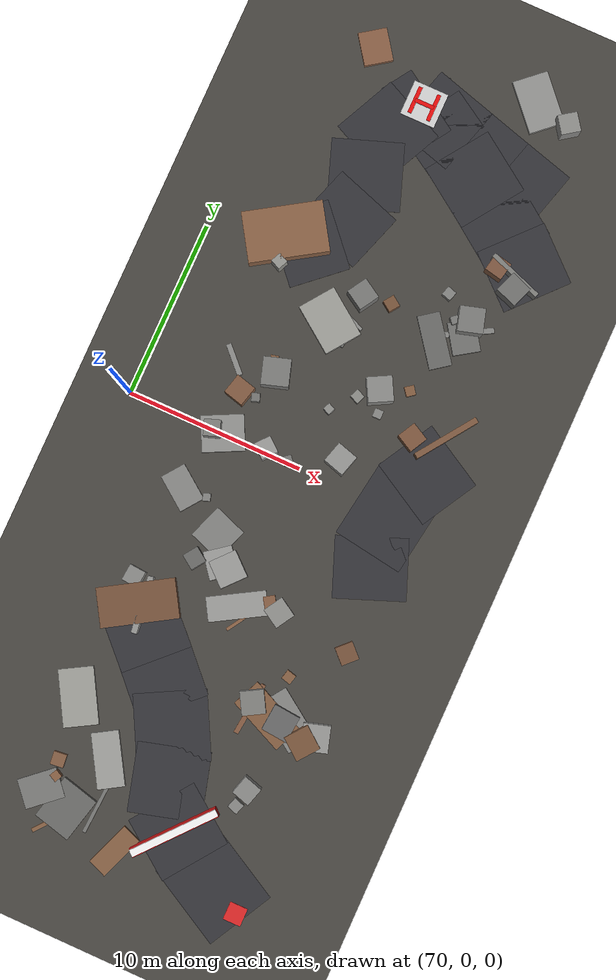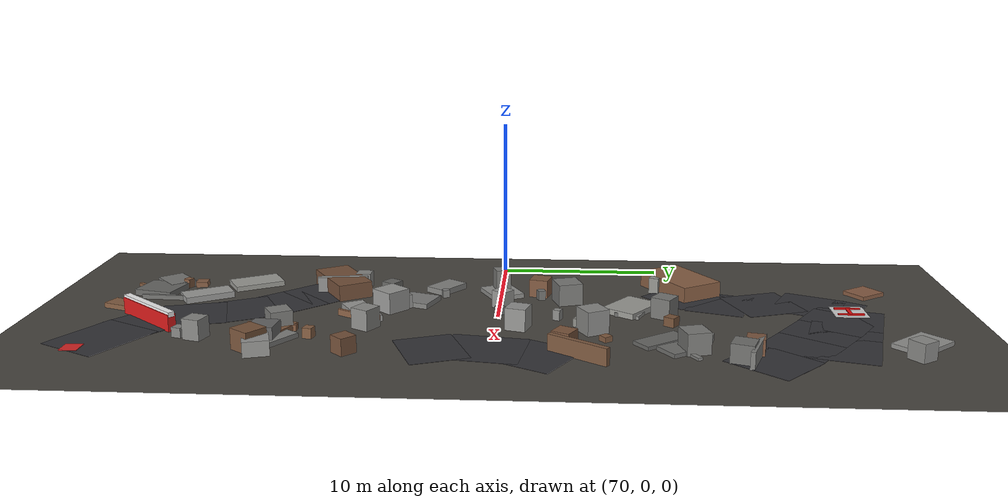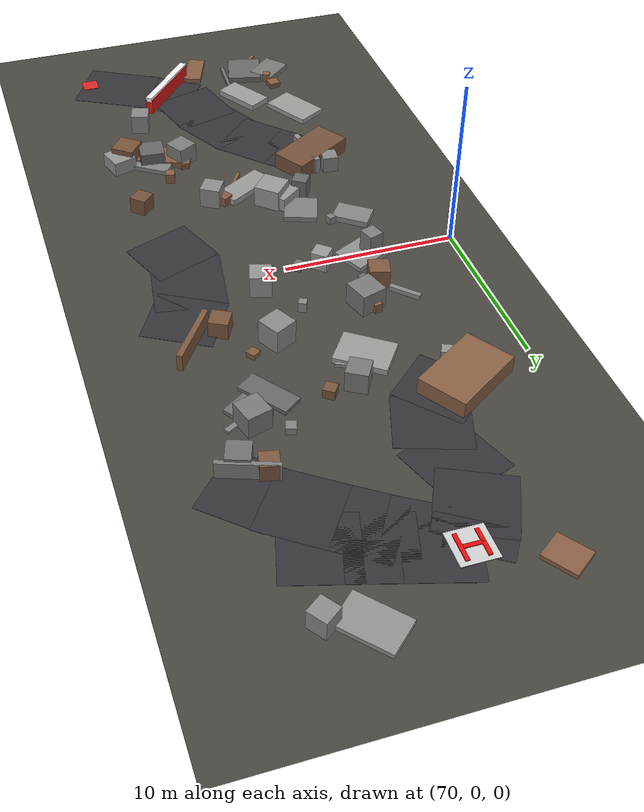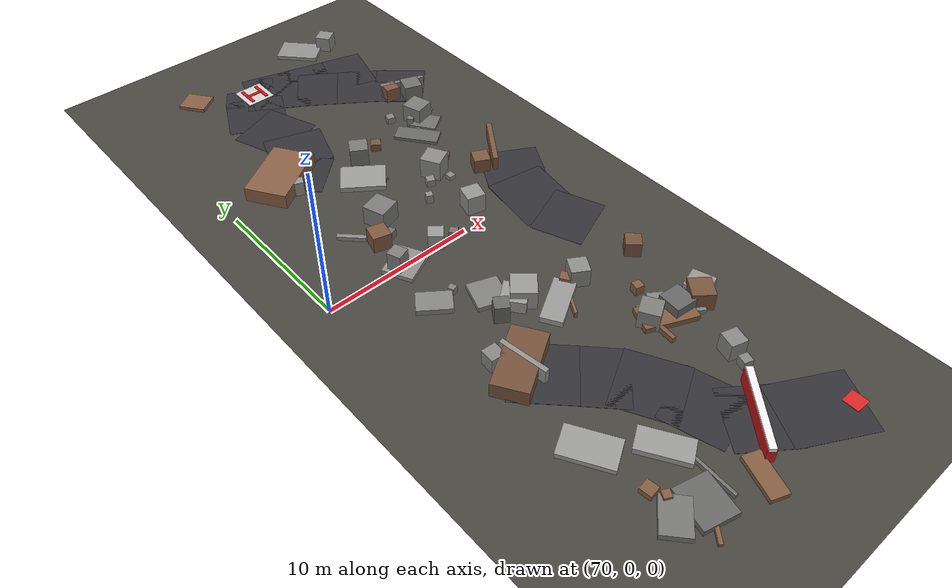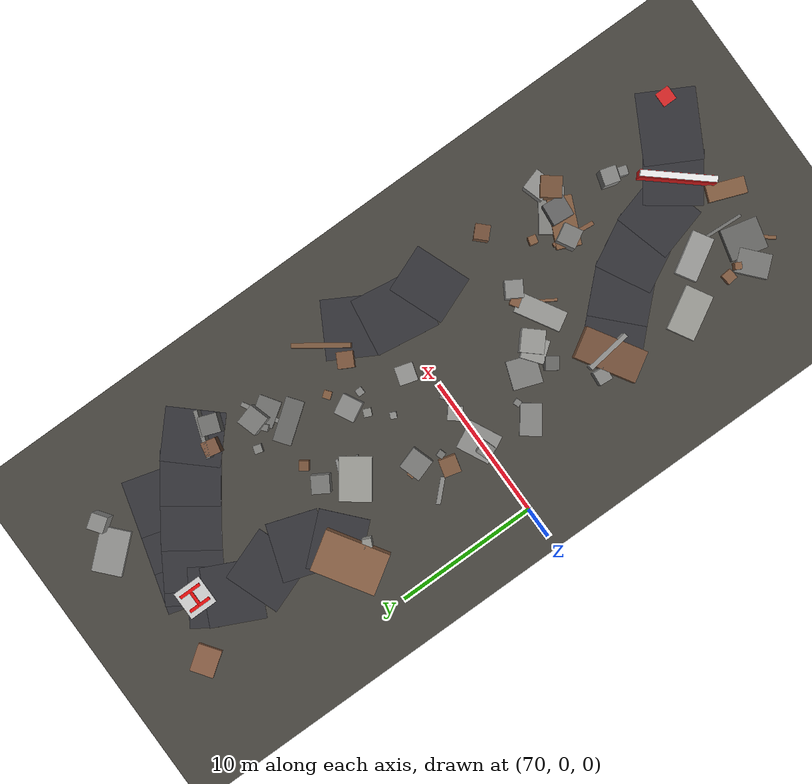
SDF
<sdf version="1.6">
 <world name="navitas_arena">
  <model name="ground_plane">
   <static>true</static>
   <link name="link">
    <collision name="collision">
     <geometry><plane><normal>0 0 1</normal><size>400 400</size></plane></geometry>
     <surface><friction><ode><mu>0.820</mu><mu2>0.820</mu2></ode></friction></surface>
    </collision>
    <visual name="visual">
     <cast_shadows>false</cast_shadows>
     <geometry><plane><normal>0 0 1</normal><size>400 400</size></plane></geometry>
     <material><ambient>0.280 0.270 0.250 1</ambient><diffuse>0.280 0.270 0.250 1</diffuse></material>
    </visual>
   </link>
  </model>
  <model name="road_zor_1_0">
   <static>true</static>
   <pose>84.910 -22.070 0.040 0 0 2.646</pose>
   <link name="link">
    <collision name="col"><geometry><box><size>4.811 4.000 0.020</size></box></geometry></collision>
    <visual name="vis">
     <geometry><box><size>4.811 4.000 0.020</size></box></geometry>
     <material><ambient>0.20 0.20 0.22 1</ambient><diffuse>0.20 0.20 0.22 1</diffuse></material>
    </visual>
   </link>
  </model>
  <model name="road_zor_1_1">
   <static>true</static>
   <pose>82.068 -20.320 0.040 0 0 2.510</pose>
   <link name="link">
    <collision name="col"><geometry><box><size>3.679 4.000 0.020</size></box></geometry></collision>
    <visual name="vis">
     <geometry><box><size>3.679 4.000 0.020</size></box></geometry>
     <material><ambient>0.20 0.20 0.22 1</ambient><diffuse>0.20 0.20 0.22 1</diffuse></material>
    </visual>
   </link>
  </model>
  <model name="road_zor_1_2">
   <static>true</static>
   <pose>80.559 -18.111 0.040 0 0 1.843</pose>
   <link name="link">
    <collision name="col"><geometry><box><size>3.784 4.000 0.020</size></box></geometry></collision>
    <visual name="vis">
     <geometry><box><size>3.784 4.000 0.020</size></box></geometry>
     <material><ambient>0.20 0.20 0.22 1</ambient><diffuse>0.20 0.20 0.22 1</diffuse></material>
    </visual>
   </link>
  </model>
  <model name="road_zor_1_3">
   <static>true</static>
   <pose>79.485 -15.427 0.040 0 0 2.058</pose>
   <link name="link">
    <collision name="col"><geometry><box><size>3.832 4.000 0.020</size></box></geometry></collision>
    <visual name="vis">
     <geometry><box><size>3.832 4.000 0.020</size></box></geometry>
     <material><ambient>0.20 0.20 0.22 1</ambient><diffuse>0.20 0.20 0.22 1</diffuse></material>
    </visual>
   </link>
  </model>
  <model name="road_zor_1_4">
   <static>true</static>
   <pose>77.865 -13.153 0.040 0 0 2.333</pose>
   <link name="link">
    <collision name="col"><geometry><box><size>3.605 4.000 0.020</size></box></geometry></collision>
    <visual name="vis">
     <geometry><box><size>3.605 4.000 0.020</size></box></geometry>
     <material><ambient>0.20 0.20 0.22 1</ambient><diffuse>0.20 0.20 0.22 1</diffuse></material>
    </visual>
   </link>
  </model>
  <model name="road_zor_1_5">
   <static>true</static>
   <pose>75.894 -11.124 0.040 0 0 2.350</pose>
   <link name="link">
    <collision name="col"><geometry><box><size>3.853 4.000 0.020</size></box></geometry></collision>
    <visual name="vis">
     <geometry><box><size>3.853 4.000 0.020</size></box></geometry>
     <material><ambient>0.20 0.20 0.22 1</ambient><diffuse>0.20 0.20 0.22 1</diffuse></material>
    </visual>
   </link>
  </model>
  <model name="road_zor_1_15">
   <static>true</static>
   <pose>75.452 11.401 0.040 0 0 0.727</pose>
   <link name="link">
    <collision name="col"><geometry><box><size>3.437 4.000 0.020</size></box></geometry></collision>
    <visual name="vis">
     <geometry><box><size>3.437 4.000 0.020</size></box></geometry>
     <material><ambient>0.20 0.20 0.22 1</ambient><diffuse>0.20 0.20 0.22 1</diffuse></material>
    </visual>
   </link>
  </model>
  <model name="road_zor_1_16">
   <static>true</static>
   <pose>76.813 13.483 0.040 0 0 1.249</pose>
   <link name="link">
    <collision name="col"><geometry><box><size>3.511 4.000 0.020</size></box></geometry></collision>
    <visual name="vis">
     <geometry><box><size>3.511 4.000 0.020</size></box></geometry>
     <material><ambient>0.20 0.20 0.22 1</ambient><diffuse>0.20 0.20 0.22 1</diffuse></material>
    </visual>
   </link>
  </model>
  <model name="road_zor_1_17">
   <static>true</static>
   <pose>76.726 16.111 0.040 0 0 1.916</pose>
   <link name="link">
    <collision name="col"><geometry><box><size>3.852 4.000 0.020</size></box></geometry></collision>
    <visual name="vis">
     <geometry><box><size>3.852 4.000 0.020</size></box></geometry>
     <material><ambient>0.20 0.20 0.22 1</ambient><diffuse>0.20 0.20 0.22 1</diffuse></material>
    </visual>
   </link>
  </model>
  <model name="road_zor_1_18">
   <static>true</static>
   <pose>76.855 18.815 0.040 0 0 1.126</pose>
   <link name="link">
    <collision name="col"><geometry><box><size>3.814 4.000 0.020</size></box></geometry></collision>
    <visual name="vis">
     <geometry><box><size>3.814 4.000 0.020</size></box></geometry>
     <material><ambient>0.20 0.20 0.22 1</ambient><diffuse>0.20 0.20 0.22 1</diffuse></material>
    </visual>
   </link>
  </model>
  <model name="road_zor_1_19">
   <static>true</static>
   <pose>77.766 20.565 0.040 0 0 0.993</pose>
   <link name="link">
    <collision name="col"><geometry><box><size>1.939 4.000 0.020</size></box></geometry></collision>
    <visual name="vis">
     <geometry><box><size>1.939 4.000 0.020</size></box></geometry>
     <material><ambient>0.20 0.20 0.22 1</ambient><diffuse>0.20 0.20 0.22 1</diffuse></material>
    </visual>
   </link>
  </model>
  <model name="road_zor_2_7">
   <static>true</static>
   <pose>85.701 -3.333 0.040 0 0 1.942</pose>
   <link name="link">
    <collision name="col"><geometry><box><size>3.404 4.000 0.020</size></box></geometry></collision>
    <visual name="vis">
     <geometry><box><size>3.404 4.000 0.020</size></box></geometry>
     <material><ambient>0.20 0.20 0.22 1</ambient><diffuse>0.20 0.20 0.22 1</diffuse></material>
    </visual>
   </link>
  </model>
  <model name="road_zor_2_8">
   <static>true</static>
   <pose>85.513 -0.417 0.040 0 0 1.420</pose>
   <link name="link">
    <collision name="col"><geometry><box><size>4.440 4.000 0.020</size></box></geometry></collision>
    <visual name="vis">
     <geometry><box><size>4.440 4.000 0.020</size></box></geometry>
     <material><ambient>0.20 0.20 0.22 1</ambient><diffuse>0.20 0.20 0.22 1</diffuse></material>
    </visual>
   </link>
  </model>
  <model name="road_zor_2_9">
   <static>true</static>
   <pose>86.440 2.500 0.040 0 0 1.056</pose>
   <link name="link">
    <collision name="col"><geometry><box><size>3.581 4.000 0.020</size></box></geometry></collision>
    <visual name="vis">
     <geometry><box><size>3.581 4.000 0.020</size></box></geometry>
     <material><ambient>0.20 0.20 0.22 1</ambient><diffuse>0.20 0.20 0.22 1</diffuse></material>
    </visual>
   </link>
  </model>
  <model name="road_zor_2_14">
   <static>true</static>
   <pose>86.650 14.984 0.040 0 0 2.404</pose>
   <link name="link">
    <collision name="col"><geometry><box><size>3.599 4.000 0.020</size></box></geometry></collision>
    <visual name="vis">
     <geometry><box><size>3.599 4.000 0.020</size></box></geometry>
     <material><ambient>0.20 0.20 0.22 1</ambient><diffuse>0.20 0.20 0.22 1</diffuse></material>
    </visual>
   </link>
  </model>
  <model name="road_zor_2_15">
   <static>true</static>
   <pose>84.539 16.696 0.040 0 0 2.516</pose>
   <link name="link">
    <collision name="col"><geometry><box><size>3.645 4.000 0.020</size></box></geometry></collision>
    <visual name="vis">
     <geometry><box><size>3.645 4.000 0.020</size></box></geometry>
     <material><ambient>0.20 0.20 0.22 1</ambient><diffuse>0.20 0.20 0.22 1</diffuse></material>
    </visual>
   </link>
  </model>
  <model name="road_zor_2_16">
   <static>true</static>
   <pose>82.241 18.320 0.040 0 0 2.537</pose>
   <link name="link">
    <collision name="col"><geometry><box><size>3.784 4.000 0.020</size></box></geometry></collision>
    <visual name="vis">
     <geometry><box><size>3.784 4.000 0.020</size></box></geometry>
     <material><ambient>0.20 0.20 0.22 1</ambient><diffuse>0.20 0.20 0.22 1</diffuse></material>
    </visual>
   </link>
  </model>
  <model name="road_zor_2_17">
   <static>true</static>
   <pose>79.922 19.840 0.040 0 0 2.588</pose>
   <link name="link">
    <collision name="col"><geometry><box><size>3.564 4.000 0.020</size></box></geometry></collision>
    <visual name="vis">
     <geometry><box><size>3.564 4.000 0.020</size></box></geometry>
     <material><ambient>0.20 0.20 0.22 1</ambient><diffuse>0.20 0.20 0.22 1</diffuse></material>
    </visual>
   </link>
  </model>
  <model name="road_zor_2_18">
   <static>true</static>
   <pose>78.419 20.770 0.040 0 0 2.585</pose>
   <link name="link">
    <collision name="col"><geometry><box><size>1.771 4.000 0.020</size></box></geometry></collision>
    <visual name="vis">
     <geometry><box><size>1.771 4.000 0.020</size></box></geometry>
     <material><ambient>0.20 0.20 0.22 1</ambient><diffuse>0.20 0.20 0.22 1</diffuse></material>
    </visual>
   </link>
  </model>
  <model name="road_zor_3_27">
   <static>true</static>
   <pose>84.547 19.133 0.040 0 0 2.867</pose>
   <link name="link">
    <collision name="col"><geometry><box><size>3.841 4.000 0.020</size></box></geometry></collision>
    <visual name="vis">
     <geometry><box><size>3.841 4.000 0.020</size></box></geometry>
     <material><ambient>0.20 0.20 0.22 1</ambient><diffuse>0.20 0.20 0.22 1</diffuse></material>
    </visual>
   </link>
  </model>
  <model name="road_zor_3_28">
   <static>true</static>
   <pose>81.909 19.885 0.040 0 0 2.860</pose>
   <link name="link">
    <collision name="col"><geometry><box><size>3.445 4.000 0.020</size></box></geometry></collision>
    <visual name="vis">
     <geometry><box><size>3.445 4.000 0.020</size></box></geometry>
     <material><ambient>0.20 0.20 0.22 1</ambient><diffuse>0.20 0.20 0.22 1</diffuse></material>
    </visual>
   </link>
  </model>
  <model name="road_zor_3_29">
   <static>true</static>
   <pose>79.368 20.619 0.040 0 0 2.860</pose>
   <link name="link">
    <collision name="col"><geometry><box><size>3.644 4.000 0.020</size></box></geometry></collision>
    <visual name="vis">
     <geometry><box><size>3.644 4.000 0.020</size></box></geometry>
     <material><ambient>0.20 0.20 0.22 1</ambient><diffuse>0.20 0.20 0.22 1</diffuse></material>
    </visual>
   </link>
  </model>
  <model name="bar_zor_1">
   <static>true</static>
   <pose>81.905 -20.320 0.500 0 0 4.004</pose>
   <link name="link">
    <collision name="col"><geometry><box><size>5.000 0.500 1.000</size></box></geometry></collision>
    <visual name="vis">
     <geometry><box><size>5.000 0.500 1.000</size></box></geometry>
     <material><ambient>0.85 0.10 0.10 1</ambient><diffuse>0.85 0.10 0.10 1</diffuse></material>
    </visual>
   </link>
  </model>
  <model name="bar_zor_1b">
   <static>true</static>
   <pose>81.905 -20.320 1.000 0 0 4.004</pose>
   <link name="link">
    <collision name="col"><geometry><box><size>5.000 0.400 0.300</size></box></geometry></collision>
    <visual name="vis">
     <geometry><box><size>5.000 0.400 0.300</size></box></geometry>
     <material><ambient>0.95 0.95 0.95 1</ambient><diffuse>0.95 0.95 0.95 1</diffuse></material>
    </visual>
   </link>
  </model>
  <model name="blk_zor_1_0_0">
   <static>true</static>
   <pose>74.349 -8.893 0.500 0 0 1.489</pose>
   <link name="link">
    <collision name="col"><geometry><box><size>0.934 0.934 1.000</size></box></geometry></collision>
    <visual name="vis">
     <geometry><box><size>0.934 0.934 1.000</size></box></geometry>
     <material><ambient>0.53 0.53 0.52 1</ambient><diffuse>0.53 0.53 0.52 1</diffuse></material>
    </visual>
   </link>
  </model>
  <model name="blk_zor_1_0_4">
   <static>true</static>
   <pose>75.403 -10.099 0.500 0 0 1.704</pose>
   <link name="link">
    <collision name="col"><geometry><box><size>3.147 0.316 1.000</size></box></geometry></collision>
    <visual name="vis">
     <geometry><box><size>3.147 0.316 1.000</size></box></geometry>
     <material><ambient>0.57 0.57 0.56 1</ambient><diffuse>0.57 0.57 0.56 1</diffuse></material>
    </visual>
   </link>
  </model>
  <model name="blk_zor_1_0_5">
   <static>true</static>
   <pose>75.141 -10.114 0.500 0 0 0.550</pose>
   <link name="link">
    <collision name="col"><geometry><box><size>4.255 2.178 1.000</size></box></geometry></collision>
    <visual name="vis">
     <geometry><box><size>4.255 2.178 1.000</size></box></geometry>
     <material><ambient>0.46 0.32 0.23 1</ambient><diffuse>0.46 0.32 0.23 1</diffuse></material>
    </visual>
   </link>
  </model>
  <model name="blk_zor_1_2_0">
   <static>true</static>
   <pose>74.106 11.307 0.500 0 0 0.569</pose>
   <link name="link">
    <collision name="col"><geometry><box><size>4.455 2.828 1.000</size></box></geometry></collision>
    <visual name="vis">
     <geometry><box><size>4.455 2.828 1.000</size></box></geometry>
     <material><ambient>0.54 0.38 0.27 1</ambient><diffuse>0.54 0.38 0.27 1</diffuse></material>
    </visual>
   </link>
  </model>
  <model name="blk_zor_1_2_5">
   <static>true</static>
   <pose>74.463 9.704 0.500 0 0 1.142</pose>
   <link name="link">
    <collision name="col"><geometry><box><size>0.611 0.611 1.000</size></box></geometry></collision>
    <visual name="vis">
     <geometry><box><size>0.611 0.611 1.000</size></box></geometry>
     <material><ambient>0.58 0.58 0.56 1</ambient><diffuse>0.58 0.58 0.56 1</diffuse></material>
    </visual>
   </link>
  </model>
  <model name="blk_zor_2_0_3">
   <static>true</static>
   <pose>86.382 -7.999 0.500 0 0 2.365</pose>
   <link name="link">
    <collision name="col"><geometry><box><size>1.002 1.002 1.000</size></box></geometry></collision>
    <visual name="vis">
     <geometry><box><size>1.002 1.002 1.000</size></box></geometry>
     <material><ambient>0.46 0.32 0.23 1</ambient><diffuse>0.46 0.32 0.23 1</diffuse></material>
    </visual>
   </link>
  </model>
  <model name="blk_zor_2_1_1">
   <static>true</static>
   <pose>86.533 4.662 0.500 0 0 0.958</pose>
   <link name="link">
    <collision name="col"><geometry><box><size>3.822 0.328 1.000</size></box></geometry></collision>
    <visual name="vis">
     <geometry><box><size>3.822 0.328 1.000</size></box></geometry>
     <material><ambient>0.49 0.35 0.25 1</ambient><diffuse>0.49 0.35 0.25 1</diffuse></material>
    </visual>
   </link>
  </model>
  <model name="blk_zor_2_1_4">
   <static>true</static>
   <pose>84.866 3.943 0.500 0 0 2.650</pose>
   <link name="link">
    <collision name="col"><geometry><box><size>1.094 1.094 1.000</size></box></geometry></collision>
    <visual name="vis">
     <geometry><box><size>1.094 1.094 1.000</size></box></geometry>
     <material><ambient>0.49 0.34 0.24 1</ambient><diffuse>0.49 0.34 0.24 1</diffuse></material>
    </visual>
   </link>
  </model>
  <model name="blk_zor_2_2_1">
   <static>true</static>
   <pose>86.587 13.439 0.577 0 0 2.789</pose>
   <link name="link">
    <collision name="col"><geometry><box><size>1.274 1.274 1.154</size></box></geometry></collision>
    <visual name="vis">
     <geometry><box><size>1.274 1.274 1.154</size></box></geometry>
     <material><ambient>0.44 0.44 0.43 1</ambient><diffuse>0.44 0.44 0.43 1</diffuse></material>
    </visual>
   </link>
  </model>
  <model name="blk_zor_2_2_5">
   <static>true</static>
   <pose>85.336 14.256 0.500 0 0 1.368</pose>
   <link name="link">
    <collision name="col"><geometry><box><size>1.015 1.015 1.000</size></box></geometry></collision>
    <visual name="vis">
     <geometry><box><size>1.015 1.015 1.000</size></box></geometry>
     <material><ambient>0.49 0.34 0.25 1</ambient><diffuse>0.49 0.34 0.25 1</diffuse></material>
    </visual>
   </link>
  </model>
  <model name="deb_zor_3">
   <static>true</static>
   <pose>75.565 -22.687 0.121 0 0 0.886</pose>
   <link name="link">
    <collision name="col"><geometry><box><size>1.872 0.220 0.241</size></box></geometry></collision>
    <visual name="vis">
     <geometry><box><size>1.872 0.220 0.241</size></box></geometry>
     <material><ambient>0.52 0.37 0.26 1</ambient><diffuse>0.52 0.37 0.26 1</diffuse></material>
    </visual>
   </link>
  </model>
  <model name="deb_zor_4">
   <static>true</static>
   <pose>80.892 10.150 0.276 0 0 0.954</pose>
   <link name="link">
    <collision name="col"><geometry><box><size>0.669 0.669 0.553</size></box></geometry></collision>
    <visual name="vis">
     <geometry><box><size>0.669 0.669 0.553</size></box></geometry>
     <material><ambient>0.47 0.33 0.23 1</ambient><diffuse>0.47 0.33 0.23 1</diffuse></material>
    </visual>
   </link>
  </model>
  <model name="deb_zor_5">
   <static>true</static>
   <pose>84.685 -12.795 0.505 0 0 3.052</pose>
   <link name="link">
    <collision name="col"><geometry><box><size>1.488 1.488 1.011</size></box></geometry></collision>
    <visual name="vis">
     <geometry><box><size>1.488 1.488 1.011</size></box></geometry>
     <material><ambient>0.40 0.40 0.40 1</ambient><diffuse>0.40 0.40 0.40 1</diffuse></material>
    </visual>
   </link>
  </model>
  <model name="deb_zor_6">
   <static>true</static>
   <pose>76.778 4.137 0.663 0 0 0.309</pose>
   <link name="link">
    <collision name="col"><geometry><box><size>1.518 1.518 1.325</size></box></geometry></collision>
    <visual name="vis">
     <geometry><box><size>1.518 1.518 1.325</size></box></geometry>
     <material><ambient>0.48 0.48 0.47 1</ambient><diffuse>0.48 0.48 0.47 1</diffuse></material>
    </visual>
   </link>
  </model>
  <model name="deb_zor_12">
   <static>true</static>
   <pose>77.959 0.221 0.538 0 0 0.870</pose>
   <link name="link">
    <collision name="col"><geometry><box><size>0.957 0.957 1.076</size></box></geometry></collision>
    <visual name="vis">
     <geometry><box><size>0.957 0.957 1.076</size></box></geometry>
     <material><ambient>0.60 0.60 0.59 1</ambient><diffuse>0.60 0.60 0.59 1</diffuse></material>
    </visual>
   </link>
  </model>
  <model name="deb_zor_14">
   <static>true</static>
   <pose>82.873 -12.806 0.181 0 0 1.467</pose>
   <link name="link">
    <collision name="col"><geometry><box><size>2.958 0.274 0.362</size></box></geometry></collision>
    <visual name="vis">
     <geometry><box><size>2.958 0.274 0.362</size></box></geometry>
     <material><ambient>0.51 0.35 0.25 1</ambient><diffuse>0.51 0.35 0.25 1</diffuse></material>
    </visual>
   </link>
  </model>
  <model name="deb_zor_15">
   <static>true</static>
   <pose>85.207 10.138 0.119 0 0 2.160</pose>
   <link name="link">
    <collision name="col"><geometry><box><size>1.820 1.532 0.239</size></box></geometry></collision>
    <visual name="vis">
     <geometry><box><size>1.820 1.532 0.239</size></box></geometry>
     <material><ambient>0.44 0.44 0.43 1</ambient><diffuse>0.44 0.44 0.43 1</diffuse></material>
    </visual>
   </link>
  </model>
  <model name="deb_zor_17">
   <static>true</static>
   <pose>84.083 -10.417 0.309 0 0 2.895</pose>
   <link name="link">
    <collision name="col"><geometry><box><size>0.555 0.555 0.618</size></box></geometry></collision>
    <visual name="vis">
     <geometry><box><size>0.555 0.555 0.618</size></box></geometry>
     <material><ambient>0.52 0.37 0.26 1</ambient><diffuse>0.52 0.37 0.26 1</diffuse></material>
    </visual>
   </link>
  </model>
  <model name="deb_zor_21">
   <static>true</static>
   <pose>74.949 -20.231 0.279 0 0 2.662</pose>
   <link name="link">
    <collision name="col"><geometry><box><size>0.464 0.464 0.557</size></box></geometry></collision>
    <visual name="vis">
     <geometry><box><size>0.464 0.464 0.557</size></box></geometry>
     <material><ambient>0.53 0.37 0.26 1</ambient><diffuse>0.53 0.37 0.26 1</diffuse></material>
    </visual>
   </link>
  </model>
  <model name="deb_zor_36">
   <static>true</static>
   <pose>75.400 2.473 0.555 0 0 2.889</pose>
   <link name="link">
    <collision name="col"><geometry><box><size>1.164 1.164 1.110</size></box></geometry></collision>
    <visual name="vis">
     <geometry><box><size>1.164 1.164 1.110</size></box></geometry>
     <material><ambient>0.50 0.35 0.25 1</ambient><diffuse>0.50 0.35 0.25 1</diffuse></material>
    </visual>
   </link>
  </model>
  <model name="deb_zor_37">
   <static>true</static>
   <pose>74.694 -19.421 0.175 0 0 1.677</pose>
   <link name="link">
    <collision name="col"><geometry><box><size>0.730 0.730 0.351</size></box></geometry></collision>
    <visual name="vis">
     <geometry><box><size>0.730 0.730 0.351</size></box></geometry>
     <material><ambient>0.51 0.36 0.26 1</ambient><diffuse>0.51 0.36 0.26 1</diffuse></material>
    </visual>
   </link>
  </model>
  <model name="deb_zor_40">
   <static>true</static>
   <pose>85.669 22.967 0.547 0 0 2.192</pose>
   <link name="link">
    <collision name="col"><geometry><box><size>1.091 1.091 1.093</size></box></geometry></collision>
    <visual name="vis">
     <geometry><box><size>1.091 1.091 1.093</size></box></geometry>
     <material><ambient>0.55 0.55 0.54 1</ambient><diffuse>0.55 0.55 0.54 1</diffuse></material>
    </visual>
   </link>
  </model>
  <model name="deb_zor_45">
   <static>true</static>
   <pose>84.505 -16.730 0.612 0 0 1.282</pose>
   <link name="link">
    <collision name="col"><geometry><box><size>1.075 1.075 1.224</size></box></geometry></collision>
    <visual name="vis">
     <geometry><box><size>1.075 1.075 1.224</size></box></geometry>
     <material><ambient>0.53 0.53 0.52 1</ambient><diffuse>0.53 0.53 0.52 1</diffuse></material>
    </visual>
   </link>
  </model>
  <model name="deb_zor_49">
   <static>true</static>
   <pose>85.351 10.478 0.077 0 0 0.514</pose>
   <link name="link">
    <collision name="col"><geometry><box><size>2.764 0.300 0.154</size></box></geometry></collision>
    <visual name="vis">
     <geometry><box><size>2.764 0.300 0.154</size></box></geometry>
     <material><ambient>0.51 0.51 0.50 1</ambient><diffuse>0.51 0.51 0.50 1</diffuse></material>
    </visual>
   </link>
  </model>
  <model name="deb_zor_55">
   <static>true</static>
   <pose>80.631 -8.496 0.192 0 0 1.018</pose>
   <link name="link">
    <collision name="col"><geometry><box><size>2.338 0.171 0.383</size></box></geometry></collision>
    <visual name="vis">
     <geometry><box><size>2.338 0.171 0.383</size></box></geometry>
     <material><ambient>0.54 0.38 0.27 1</ambient><diffuse>0.54 0.38 0.27 1</diffuse></material>
    </visual>
   </link>
  </model>
  <model name="deb_zor_56">
   <static>true</static>
   <pose>76.138 -21.601 0.192 0 0 1.330</pose>
   <link name="link">
    <collision name="col"><geometry><box><size>2.518 2.153 0.383</size></box></geometry></collision>
    <visual name="vis">
     <geometry><box><size>2.518 2.153 0.383</size></box></geometry>
     <material><ambient>0.41 0.41 0.40 1</ambient><diffuse>0.41 0.41 0.40 1</diffuse></material>
    </visual>
   </link>
  </model>
  <model name="deb_zor_59">
   <static>true</static>
   <pose>77.104 -18.355 0.189 0 0 2.115</pose>
   <link name="link">
    <collision name="col"><geometry><box><size>3.008 1.493 0.379</size></box></geometry></collision>
    <visual name="vis">
     <geometry><box><size>3.008 1.493 0.379</size></box></geometry>
     <material><ambient>0.61 0.61 0.60 1</ambient><diffuse>0.61 0.61 0.60 1</diffuse></material>
    </visual>
   </link>
  </model>
  <model name="deb_zor_64">
   <static>true</static>
   <pose>78.231 7.972 0.178 0 0 2.510</pose>
   <link name="link">
    <collision name="col"><geometry><box><size>2.944 2.172 0.356</size></box></geometry></collision>
    <visual name="vis">
     <geometry><box><size>2.944 2.172 0.356</size></box></geometry>
     <material><ambient>0.61 0.61 0.59 1</ambient><diffuse>0.61 0.61 0.59 1</diffuse></material>
    </visual>
   </link>
  </model>
  <model name="deb_zor_71">
   <static>true</static>
   <pose>84.945 -12.562 0.141 0 0 2.541</pose>
   <link name="link">
    <collision name="col"><geometry><box><size>3.061 1.689 0.282</size></box></geometry></collision>
    <visual name="vis">
     <geometry><box><size>3.061 1.689 0.282</size></box></geometry>
     <material><ambient>0.51 0.51 0.50 1</ambient><diffuse>0.51 0.51 0.50 1</diffuse></material>
    </visual>
   </link>
  </model>
  <model name="deb_zor_73">
   <static>true</static>
   <pose>78.269 -6.373 0.410 0 0 2.229</pose>
   <link name="link">
    <collision name="col"><geometry><box><size>1.576 1.576 0.819</size></box></geometry></collision>
    <visual name="vis">
     <geometry><box><size>1.576 1.576 0.819</size></box></geometry>
     <material><ambient>0.60 0.60 0.59 1</ambient><diffuse>0.60 0.60 0.59 1</diffuse></material>
    </visual>
   </link>
  </model>
  <model name="deb_zor_77">
   <static>true</static>
   <pose>80.007 -8.122 0.192 0 0 0.532</pose>
   <link name="link">
    <collision name="col"><geometry><box><size>3.257 1.364 0.384</size></box></geometry></collision>
    <visual name="vis">
     <geometry><box><size>3.257 1.364 0.384</size></box></geometry>
     <material><ambient>0.60 0.60 0.59 1</ambient><diffuse>0.60 0.60 0.59 1</diffuse></material>
    </visual>
   </link>
  </model>
  <model name="deb_zor_78">
   <static>true</static>
   <pose>76.111 -3.469 0.234 0 0 1.907</pose>
   <link name="link">
    <collision name="col"><geometry><box><size>0.422 0.422 0.469</size></box></geometry></collision>
    <visual name="vis">
     <geometry><box><size>0.422 0.422 0.469</size></box></geometry>
     <material><ambient>0.50 0.50 0.49 1</ambient><diffuse>0.50 0.50 0.49 1</diffuse></material>
    </visual>
   </link>
  </model>
  <model name="deb_zor_79">
   <static>true</static>
   <pose>83.834 9.308 0.113 0 0 2.213</pose>
   <link name="link">
    <collision name="col"><geometry><box><size>2.999 1.257 0.225</size></box></geometry></collision>
    <visual name="vis">
     <geometry><box><size>2.999 1.257 0.225</size></box></geometry>
     <material><ambient>0.41 0.41 0.40 1</ambient><diffuse>0.41 0.41 0.40 1</diffuse></material>
    </visual>
   </link>
  </model>
  <model name="deb_zor_82">
   <static>true</static>
   <pose>83.700 23.600 0.133 0 0 2.304</pose>
   <link name="link">
    <collision name="col"><geometry><box><size>2.997 2.014 0.266</size></box></geometry></collision>
    <visual name="vis">
     <geometry><box><size>2.997 2.014 0.266</size></box></geometry>
     <material><ambient>0.57 0.57 0.56 1</ambient><diffuse>0.57 0.57 0.56 1</diffuse></material>
    </visual>
   </link>
  </model>
  <model name="deb_zor_97">
   <static>true</static>
   <pose>86.695 -12.753 0.443 0 0 0.296</pose>
   <link name="link">
    <collision name="col"><geometry><box><size>1.467 1.467 0.886</size></box></geometry></collision>
    <visual name="vis">
     <geometry><box><size>1.467 1.467 0.886</size></box></geometry>
     <material><ambient>0.58 0.58 0.57 1</ambient><diffuse>0.58 0.58 0.57 1</diffuse></material>
    </visual>
   </link>
  </model>
  <model name="deb_zor_109">
   <static>true</static>
   <pose>80.160 3.548 0.310 0 0 2.716</pose>
   <link name="link">
    <collision name="col"><geometry><box><size>0.439 0.439 0.620</size></box></geometry></collision>
    <visual name="vis">
     <geometry><box><size>0.439 0.439 0.620</size></box></geometry>
     <material><ambient>0.55 0.55 0.54 1</ambient><diffuse>0.55 0.55 0.54 1</diffuse></material>
    </visual>
   </link>
  </model>
  <model name="deb_zor_114">
   <static>true</static>
   <pose>83.517 11.948 0.222 0 0 1.277</pose>
   <link name="link">
    <collision name="col"><geometry><box><size>0.553 0.553 0.444</size></box></geometry></collision>
    <visual name="vis">
     <geometry><box><size>0.553 0.553 0.444</size></box></geometry>
     <material><ambient>0.51 0.51 0.50 1</ambient><diffuse>0.51 0.51 0.50 1</diffuse></material>
    </visual>
   </link>
  </model>
  <model name="deb_zor_119">
   <static>true</static>
   <pose>83.860 -12.776 0.191 0 0 2.725</pose>
   <link name="link">
    <collision name="col"><geometry><box><size>3.344 1.668 0.382</size></box></geometry></collision>
    <visual name="vis">
     <geometry><box><size>3.344 1.668 0.382</size></box></geometry>
     <material><ambient>0.51 0.36 0.25 1</ambient><diffuse>0.51 0.36 0.25 1</diffuse></material>
    </visual>
   </link>
  </model>
  <model name="deb_zor_126">
   <static>true</static>
   <pose>79.268 0.122 0.225 0 0 2.257</pose>
   <link name="link">
    <collision name="col"><geometry><box><size>0.511 0.511 0.450</size></box></geometry></collision>
    <visual name="vis">
     <geometry><box><size>0.511 0.511 0.450</size></box></geometry>
     <material><ambient>0.45 0.45 0.44 1</ambient><diffuse>0.45 0.45 0.44 1</diffuse></material>
    </visual>
   </link>
  </model>
  <model name="deb_zor_127">
   <static>true</static>
   <pose>82.233 5.554 0.713 0 0 0.490</pose>
   <link name="link">
    <collision name="col"><geometry><box><size>1.384 1.384 1.425</size></box></geometry></collision>
    <visual name="vis">
     <geometry><box><size>1.384 1.384 1.425</size></box></geometry>
     <material><ambient>0.54 0.54 0.53 1</ambient><diffuse>0.54 0.54 0.53 1</diffuse></material>
    </visual>
   </link>
  </model>
  <model name="deb_zor_130">
   <static>true</static>
   <pose>79.311 9.876 0.628 0 0 2.596</pose>
   <link name="link">
    <collision name="col"><geometry><box><size>1.213 1.213 1.256</size></box></geometry></collision>
    <visual name="vis">
     <geometry><box><size>1.213 1.213 1.256</size></box></geometry>
     <material><ambient>0.47 0.47 0.46 1</ambient><diffuse>0.47 0.47 0.46 1</diffuse></material>
    </visual>
   </link>
  </model>
  <model name="deb_zor_133">
   <static>true</static>
   <pose>75.474 0.038 0.141 0 0 0.462</pose>
   <link name="link">
    <collision name="col"><geometry><box><size>2.350 1.999 0.283</size></box></geometry></collision>
    <visual name="vis">
     <geometry><box><size>2.350 1.999 0.283</size></box></geometry>
     <material><ambient>0.56 0.56 0.55 1</ambient><diffuse>0.56 0.56 0.55 1</diffuse></material>
    </visual>
   </link>
  </model>
  <model name="deb_zor_144">
   <static>true</static>
   <pose>76.376 4.785 0.283 0 0 1.784</pose>
   <link name="link">
    <collision name="col"><geometry><box><size>0.445 0.445 0.567</size></box></geometry></collision>
    <visual name="vis">
     <geometry><box><size>0.445 0.445 0.567</size></box></geometry>
     <material><ambient>0.52 0.37 0.26 1</ambient><diffuse>0.52 0.37 0.26 1</diffuse></material>
    </visual>
   </link>
  </model>
  <model name="deb_zor_146">
   <static>true</static>
   <pose>76.917 -6.708 0.607 0 0 2.535</pose>
   <link name="link">
    <collision name="col"><geometry><box><size>0.905 0.905 1.215</size></box></geometry></collision>
    <visual name="vis">
     <geometry><box><size>0.905 0.905 1.215</size></box></geometry>
     <material><ambient>0.41 0.41 0.40 1</ambient><diffuse>0.41 0.41 0.40 1</diffuse></material>
    </visual>
   </link>
  </model>
  <model name="deb_zor_147">
   <static>true</static>
   <pose>77.456 -4.997 0.157 0 0 1.226</pose>
   <link name="link">
    <collision name="col"><geometry><box><size>2.014 1.944 0.314</size></box></geometry></collision>
    <visual name="vis">
     <geometry><box><size>2.014 1.944 0.314</size></box></geometry>
     <material><ambient>0.50 0.50 0.49 1</ambient><diffuse>0.50 0.50 0.49 1</diffuse></material>
    </visual>
   </link>
  </model>
  <model name="deb_zor_150">
   <static>true</static>
   <pose>76.518 -20.996 0.152 0 0 1.782</pose>
   <link name="link">
    <collision name="col"><geometry><box><size>0.489 0.489 0.305</size></box></geometry></collision>
    <visual name="vis">
     <geometry><box><size>0.489 0.489 0.305</size></box></geometry>
     <material><ambient>0.53 0.37 0.27 1</ambient><diffuse>0.53 0.37 0.27 1</diffuse></material>
    </visual>
   </link>
  </model>
  <model name="deb_zor_151">
   <static>true</static>
   <pose>76.301 2.511 0.294 0 0 0.331</pose>
   <link name="link">
    <collision name="col"><geometry><box><size>0.459 0.459 0.587</size></box></geometry></collision>
    <visual name="vis">
     <geometry><box><size>0.459 0.459 0.587</size></box></geometry>
     <material><ambient>0.45 0.45 0.44 1</ambient><diffuse>0.45 0.45 0.44 1</diffuse></material>
    </visual>
   </link>
  </model>
  <model name="deb_zor_154">
   <static>true</static>
   <pose>86.132 -13.260 0.618 0 0 0.913</pose>
   <link name="link">
    <collision name="col"><geometry><box><size>1.407 1.407 1.237</size></box></geometry></collision>
    <visual name="vis">
     <geometry><box><size>1.407 1.407 1.237</size></box></geometry>
     <material><ambient>0.47 0.33 0.23 1</ambient><diffuse>0.47 0.33 0.23 1</diffuse></material>
    </visual>
   </link>
  </model>
  <model name="deb_zor_155">
   <static>true</static>
   <pose>79.417 -22.592 0.156 0 0 1.206</pose>
   <link name="link">
    <collision name="col"><geometry><box><size>2.600 1.114 0.312</size></box></geometry></collision>
    <visual name="vis">
     <geometry><box><size>2.600 1.114 0.312</size></box></geometry>
     <material><ambient>0.52 0.37 0.26 1</ambient><diffuse>0.52 0.37 0.26 1</diffuse></material>
    </visual>
   </link>
  </model>
  <model name="deb_zor_157">
   <static>true</static>
   <pose>78.691 8.776 0.104 0 0 2.743</pose>
   <link name="link">
    <collision name="col"><geometry><box><size>2.808 0.185 0.208</size></box></geometry></collision>
    <visual name="vis">
     <geometry><box><size>2.808 0.185 0.208</size></box></geometry>
     <material><ambient>0.54 0.54 0.53 1</ambient><diffuse>0.54 0.54 0.53 1</diffuse></material>
    </visual>
   </link>
  </model>
  <model name="deb_zor_161">
   <static>true</static>
   <pose>74.709 -3.541 0.182 0 0 2.504</pose>
   <link name="link">
    <collision name="col"><geometry><box><size>2.148 1.444 0.364</size></box></geometry></collision>
    <visual name="vis">
     <geometry><box><size>2.148 1.444 0.364</size></box></geometry>
     <material><ambient>0.52 0.52 0.51 1</ambient><diffuse>0.52 0.52 0.51 1</diffuse></material>
    </visual>
   </link>
  </model>
  <model name="deb_zor_164">
   <static>true</static>
   <pose>78.656 7.201 0.119 0 0 2.916</pose>
   <link name="link">
    <collision name="col"><geometry><box><size>1.665 0.212 0.238</size></box></geometry></collision>
    <visual name="vis">
     <geometry><box><size>1.665 0.212 0.238</size></box></geometry>
     <material><ambient>0.42 0.42 0.41 1</ambient><diffuse>0.42 0.42 0.41 1</diffuse></material>
    </visual>
   </link>
  </model>
  <model name="deb_zor_166">
   <static>true</static>
   <pose>82.666 4.421 0.151 0 0 1.583</pose>
   <link name="link">
    <collision name="col"><geometry><box><size>0.487 0.487 0.303</size></box></geometry></collision>
    <visual name="vis">
     <geometry><box><size>0.487 0.487 0.303</size></box></geometry>
     <material><ambient>0.52 0.52 0.51 1</ambient><diffuse>0.52 0.52 0.51 1</diffuse></material>
    </visual>
   </link>
  </model>
  <model name="deb_zor_167">
   <static>true</static>
   <pose>81.516 -7.192 0.285 0 0 2.156</pose>
   <link name="link">
    <collision name="col"><geometry><box><size>0.651 0.651 0.569</size></box></geometry></collision>
    <visual name="vis">
     <geometry><box><size>0.651 0.651 0.569</size></box></geometry>
     <material><ambient>0.52 0.36 0.26 1</ambient><diffuse>0.52 0.36 0.26 1</diffuse></material>
    </visual>
   </link>
  </model>
  <model name="deb_zor_170">
   <static>true</static>
   <pose>82.206 -7.503 0.621 0 0 1.029</pose>
   <link name="link">
    <collision name="col"><geometry><box><size>1.174 1.174 1.243</size></box></geometry></collision>
    <visual name="vis">
     <geometry><box><size>1.174 1.174 1.243</size></box></geometry>
     <material><ambient>0.55 0.55 0.54 1</ambient><diffuse>0.55 0.55 0.54 1</diffuse></material>
    </visual>
   </link>
  </model>
  <model name="deb_zor_174">
   <static>true</static>
   <pose>84.307 -17.763 0.293 0 0 2.821</pose>
   <link name="link">
    <collision name="col"><geometry><box><size>0.605 0.605 0.587</size></box></geometry></collision>
    <visual name="vis">
     <geometry><box><size>0.605 0.605 0.587</size></box></geometry>
     <material><ambient>0.52 0.52 0.51 1</ambient><diffuse>0.52 0.52 0.51 1</diffuse></material>
    </visual>
   </link>
  </model>
  <model name="deb_zor_177">
   <static>true</static>
   <pose>77.593 -20.995 0.139 0 0 1.514</pose>
   <link name="link">
    <collision name="col"><geometry><box><size>2.731 0.193 0.278</size></box></geometry></collision>
    <visual name="vis">
     <geometry><box><size>2.731 0.193 0.278</size></box></geometry>
     <material><ambient>0.45 0.45 0.44 1</ambient><diffuse>0.45 0.45 0.44 1</diffuse></material>
    </visual>
   </link>
  </model>
  <model name="deb_zor_183">
   <static>true</static>
   <pose>74.386 3.925 0.143 0 0 2.345</pose>
   <link name="link">
    <collision name="col"><geometry><box><size>1.796 0.298 0.286</size></box></geometry></collision>
    <visual name="vis">
     <geometry><box><size>1.796 0.298 0.286</size></box></geometry>
     <material><ambient>0.54 0.54 0.53 1</ambient><diffuse>0.54 0.54 0.53 1</diffuse></material>
    </visual>
   </link>
  </model>
  <model name="deb_zor_190">
   <static>true</static>
   <pose>74.276 -15.983 0.158 0 0 2.094</pose>
   <link name="link">
    <collision name="col"><geometry><box><size>3.127 1.916 0.316</size></box></geometry></collision>
    <visual name="vis">
     <geometry><box><size>3.127 1.916 0.316</size></box></geometry>
     <material><ambient>0.61 0.61 0.59 1</ambient><diffuse>0.61 0.61 0.59 1</diffuse></material>
    </visual>
   </link>
  </model>
  <model name="deb_zor_193">
   <static>true</static>
   <pose>74.337 22.781 0.124 0 0 2.188</pose>
   <link name="link">
    <collision name="col"><geometry><box><size>1.864 1.615 0.248</size></box></geometry></collision>
    <visual name="vis">
     <geometry><box><size>1.864 1.615 0.248</size></box></geometry>
     <material><ambient>0.54 0.37 0.27 1</ambient><diffuse>0.54 0.37 0.27 1</diffuse></material>
    </visual>
   </link>
  </model>
  <model name="deb_zor_197">
   <static>true</static>
   <pose>82.879 -12.384 0.627 0 0 2.090</pose>
   <link name="link">
    <collision name="col"><geometry><box><size>1.289 1.289 1.254</size></box></geometry></collision>
    <visual name="vis">
     <geometry><box><size>1.289 1.289 1.254</size></box></geometry>
     <material><ambient>0.49 0.49 0.48 1</ambient><diffuse>0.49 0.49 0.48 1</diffuse></material>
    </visual>
   </link>
  </model>
  <model name="deb_zor_203">
   <static>true</static>
   <pose>74.492 -21.176 0.194 0 0 0.723</pose>
   <link name="link">
    <collision name="col"><geometry><box><size>2.183 1.637 0.388</size></box></geometry></collision>
    <visual name="vis">
     <geometry><box><size>2.183 1.637 0.388</size></box></geometry>
     <material><ambient>0.47 0.47 0.46 1</ambient><diffuse>0.47 0.47 0.46 1</diffuse></material>
    </visual>
   </link>
  </model>
  <model name="deb_zor_206">
   <static>true</static>
   <pose>81.278 4.806 0.245 0 0 2.739</pose>
   <link name="link">
    <collision name="col"><geometry><box><size>0.545 0.545 0.490</size></box></geometry></collision>
    <visual name="vis">
     <geometry><box><size>0.545 0.545 0.490</size></box></geometry>
     <material><ambient>0.54 0.54 0.52 1</ambient><diffuse>0.54 0.54 0.52 1</diffuse></material>
    </visual>
   </link>
  </model>
  <model name="deb_zor_208">
   <static>true</static>
   <pose>83.746 6.260 0.159 0 0 0.652</pose>
   <link name="link">
    <collision name="col"><geometry><box><size>0.538 0.538 0.317</size></box></geometry></collision>
    <visual name="vis">
     <geometry><box><size>0.538 0.538 0.317</size></box></geometry>
     <material><ambient>0.51 0.36 0.25 1</ambient><diffuse>0.51 0.36 0.25 1</diffuse></material>
    </visual>
   </link>
  </model>
  <model name="deb_zor_210">
   <static>true</static>
   <pose>81.837 1.290 0.665 0 0 2.856</pose>
   <link name="link">
    <collision name="col"><geometry><box><size>1.226 1.226 1.331</size></box></geometry></collision>
    <visual name="vis">
     <geometry><box><size>1.226 1.226 1.331</size></box></geometry>
     <material><ambient>0.58 0.58 0.57 1</ambient><diffuse>0.58 0.58 0.57 1</diffuse></material>
    </visual>
   </link>
  </model>
  <model name="deb_zor_216">
   <static>true</static>
   <pose>85.174 10.990 0.634 0 0 1.856</pose>
   <link name="link">
    <collision name="col"><geometry><box><size>1.396 1.396 1.267</size></box></geometry></collision>
    <visual name="vis">
     <geometry><box><size>1.396 1.396 1.267</size></box></geometry>
     <material><ambient>0.48 0.48 0.47 1</ambient><diffuse>0.48 0.48 0.47 1</diffuse></material>
    </visual>
   </link>
  </model>
  <model name="deb_zor_228">
   <static>true</static>
   <pose>84.372 10.734 0.301 0 0 2.267</pose>
   <link name="link">
    <collision name="col"><geometry><box><size>0.433 0.433 0.601</size></box></geometry></collision>
    <visual name="vis">
     <geometry><box><size>0.433 0.433 0.601</size></box></geometry>
     <material><ambient>0.47 0.47 0.46 1</ambient><diffuse>0.47 0.47 0.46 1</diffuse></material>
    </visual>
   </link>
  </model>
  <model name="deb_zor_230">
   <static>true</static>
   <pose>78.793 -6.517 0.649 0 0 0.846</pose>
   <link name="link">
    <collision name="col"><geometry><box><size>1.559 1.559 1.297</size></box></geometry></collision>
    <visual name="vis">
     <geometry><box><size>1.559 1.559 1.297</size></box></geometry>
     <material><ambient>0.60 0.60 0.59 1</ambient><diffuse>0.60 0.60 0.59 1</diffuse></material>
    </visual>
   </link>
  </model>
  <model name="deb_zor_232">
   <static>true</static>
   <pose>74.913 -0.012 0.769 0 0 1.908</pose>
   <link name="link">
    <collision name="col"><geometry><box><size>0.908 0.908 1.538</size></box></geometry></collision>
    <visual name="vis">
     <geometry><box><size>0.908 0.908 1.538</size></box></geometry>
     <material><ambient>0.49 0.49 0.48 1</ambient><diffuse>0.49 0.49 0.48 1</diffuse></material>
    </visual>
   </link>
  </model>
  <model name="chic_zor_6">
   <static>true</static>
   <pose>86.359 14.214 0.500 0 0 2.796</pose>
   <link name="link">
    <collision name="col"><geometry><box><size>3.192 0.263 1.000</size></box></geometry></collision>
    <visual name="vis">
     <geometry><box><size>3.192 0.263 1.000</size></box></geometry>
     <material><ambient>0.49 0.49 0.48 1</ambient><diffuse>0.49 0.49 0.48 1</diffuse></material>
    </visual>
   </link>
  </model>
  <model name="kb_zor">
   <static>true</static>
   <pose>86.630 -23.000 0.070 0 0 0.000</pose>
   <link name="link">
    <collision name="col"><geometry><box><size>1.000 1.000 0.040</size></box></geometry></collision>
    <visual name="vis">
     <geometry><box><size>1.000 1.000 0.040</size></box></geometry>
     <material><ambient>0.85 0.15 0.15 1</ambient><diffuse>0.85 0.15 0.15 1</diffuse></material>
    </visual>
   </link>
  </model>
  <model name="hbpad_zor">
   <static>true</static>
   <pose>78.050 21.000 0.070 0 0 0.000</pose>
   <link name="link">
    <collision name="col"><geometry><box><size>2.000 2.000 0.040</size></box></geometry></collision>
    <visual name="vis">
     <geometry><box><size>2.000 2.000 0.040</size></box></geometry>
     <material><ambient>0.82 0.82 0.82 1</ambient><diffuse>0.82 0.82 0.82 1</diffuse></material>
    </visual>
   </link>
  </model>
  <model name="H_zor_l">
   <static>true</static>
   <pose>77.500 21.000 0.100 0 0 0.000</pose>
   <link name="link">
    <collision name="col"><geometry><box><size>0.220 1.550 0.100</size></box></geometry></collision>
    <visual name="vis">
     <geometry><box><size>0.220 1.550 0.100</size></box></geometry>
     <material><ambient>0.90 0.05 0.05 1</ambient><diffuse>0.90 0.05 0.05 1</diffuse></material>
    </visual>
   </link>
  </model>
  <model name="H_zor_r">
   <static>true</static>
   <pose>78.600 21.000 0.100 0 0 0.000</pose>
   <link name="link">
    <collision name="col"><geometry><box><size>0.220 1.550 0.100</size></box></geometry></collision>
    <visual name="vis">
     <geometry><box><size>0.220 1.550 0.100</size></box></geometry>
     <material><ambient>0.90 0.05 0.05 1</ambient><diffuse>0.90 0.05 0.05 1</diffuse></material>
    </visual>
   </link>
  </model>
  <model name="H_zor_b">
   <static>true</static>
   <pose>78.050 21.000 0.100 0 0 0.000</pose>
   <link name="link">
    <collision name="col"><geometry><box><size>1.100 0.220 0.100</size></box></geometry></collision>
    <visual name="vis">
     <geometry><box><size>1.100 0.220 0.100</size></box></geometry>
     <material><ambient>0.90 0.05 0.05 1</ambient><diffuse>0.90 0.05 0.05 1</diffuse></material>
    </visual>
   </link>
  </model>
 </world>
</sdf>
